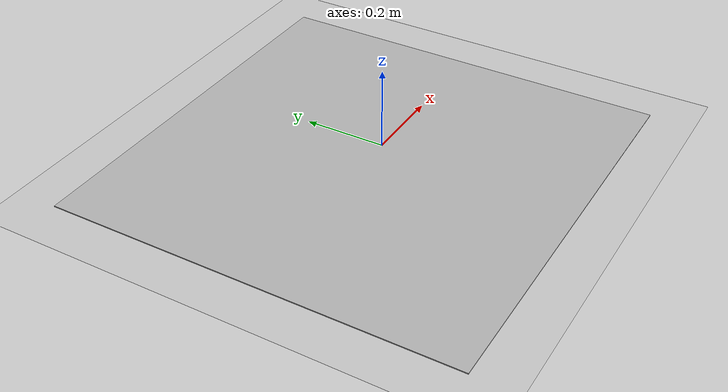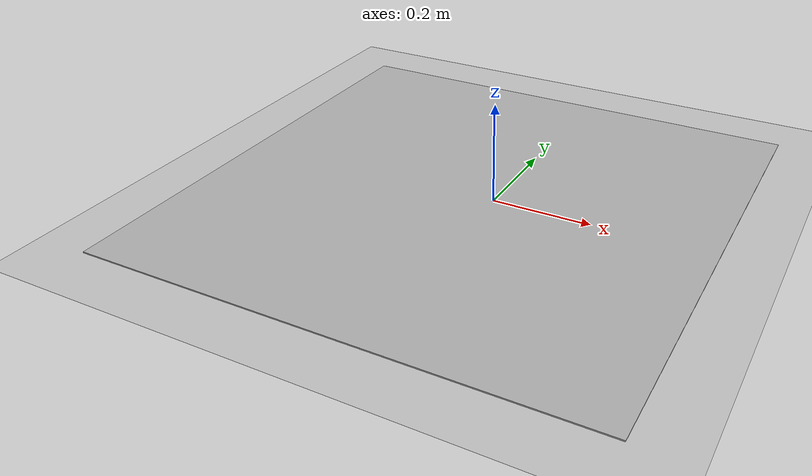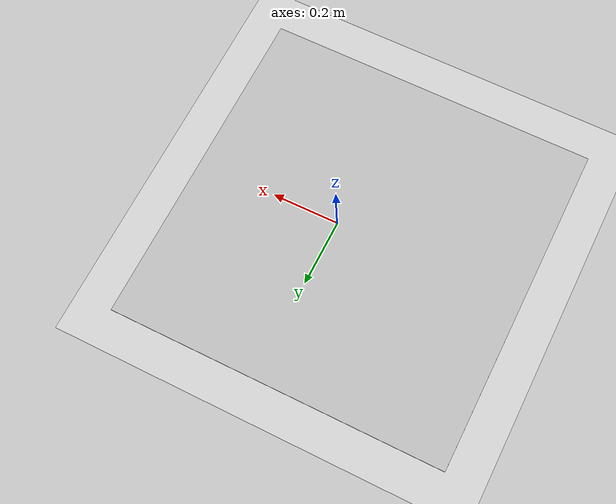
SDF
<sdf version="1.7">
 <world name="default">
  <light name="sun" type="directional">
   <pose>0 0 10 0 -0 0</pose>
   <diffuse>0.8 0.8 0.8 1</diffuse>
   <specular>0.2 0.2 0.2 1</specular>
   <attenuation>
    <range>1000</range>
    <constant>0.9</constant>
    <linear>0.01</linear>
    <quadratic>0.001</quadratic>
   </attenuation>
   <direction>-0.5 0.1 -0.9</direction>
  </light>
  <model name="ground_plane">
   <static>1</static>
   <link name="link">
    <collision name="collision">
     <geometry><plane><normal>0 0 1</normal><size>100 100</size></plane></geometry>
     <surface>
      <contact><collide_bitmask>65535</collide_bitmask></contact>
      <friction><ode><mu>100</mu><mu2>50</mu2></ode></friction>
     </surface>
    </collision>
    <visual name="visual">
     <cast_shadows>0</cast_shadows>
     <geometry><plane><normal>0 0 1</normal><size>100 100</size></plane></geometry>
     <material>
      <script><uri>file://media/materials/scripts/gazebo.material</uri><name>Gazebo/Grey</name></script>
     </material>
    </visual>
   </link>
  </model>
  <gravity>0 0 -9.8</gravity>
  <magnetic_field>6e-06 2.3e-05 -4.2e-05</magnetic_field>
  <atmosphere type="adiabatic"/>
  <physics type="ode">
   <max_step_size>0.001</max_step_size>
   <real_time_factor>1</real_time_factor>
   <real_time_update_rate>1000</real_time_update_rate>
  </physics>
  <scene><ambient>0.4 0.4 0.4 1</ambient><background>0.7 0.7 0.7 1</background><shadows>1</shadows></scene>
  <spherical_coordinates>
   <surface_model>EARTH_WGS84</surface_model>
   <latitude_deg>0</latitude_deg>
   <longitude_deg>0</longitude_deg>
   <elevation>0</elevation>
   <heading_deg>0</heading_deg>
  </spherical_coordinates>
  <model name="MarkerData_50">
   <static>1</static>
   <link name="link">
    <visual name="visual">
     <geometry>
      <mesh><uri>model://markerdata_50/meshes/MarkerData_50.dae</uri><scale>2 2 2</scale></mesh>
     </geometry>
    </visual>
   </link>
   <pose>0.44 0 -0.009 3.14159 -1.57079 3.14159</pose>
  </model>
  <light name="user_directional_light_0" type="directional">
   <pose>-0.034411 -0.006861 1 0 -0 0</pose>
   <diffuse>0.5 0.5 0.5 1</diffuse>
   <specular>0.1 0.1 0.1 1</specular>
   <direction>0.1 0.1 -0.9</direction>
   <attenuation>
    <range>20</range>
    <constant>0.5</constant>
    <linear>0.01</linear>
    <quadratic>0.001</quadratic>
   </attenuation>
  </light>
 </world>
</sdf>
